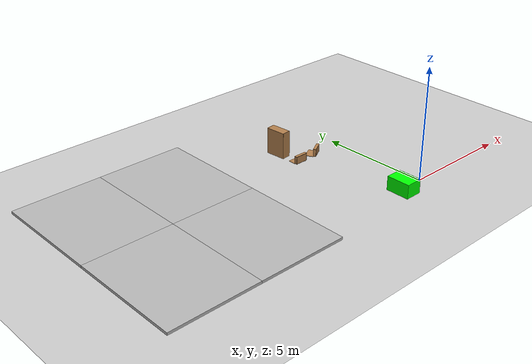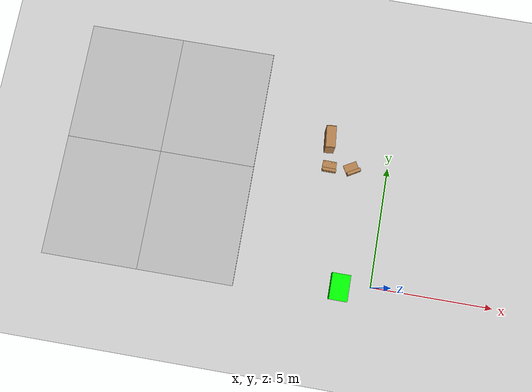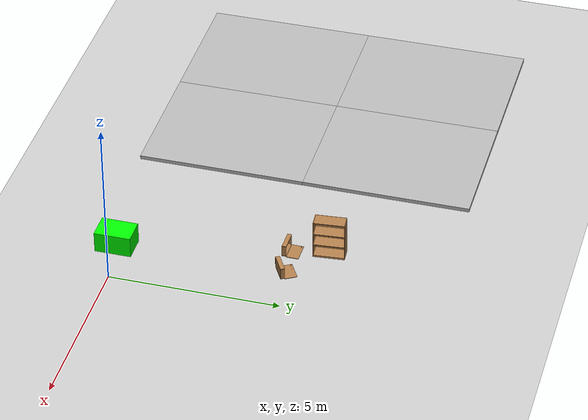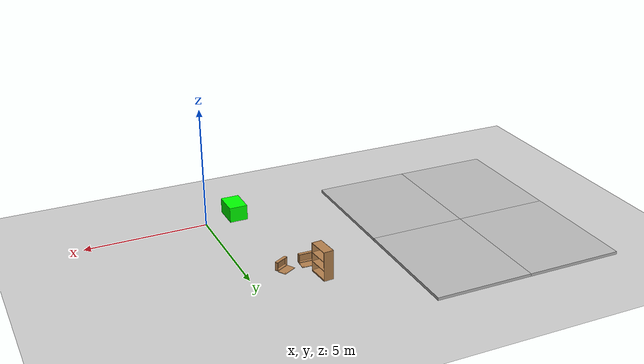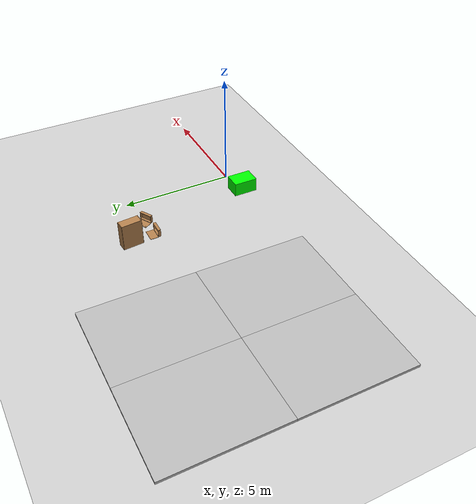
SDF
<sdf version="1.7">
 <world name="default">
  <model name="ground_plane">
   <static>1</static>
   <link name="link">
    <collision name="collision">
     <geometry><plane><normal>0 0 1</normal><size>100 100</size></plane></geometry>
     <surface>
      <contact><collide_bitmask>65535</collide_bitmask></contact>
      <friction><ode><mu>100</mu><mu2>50</mu2></ode></friction>
     </surface>
    </collision>
    <visual name="visual">
     <cast_shadows>0</cast_shadows>
     <geometry><plane><normal>0 0 1</normal><size>100 100</size></plane></geometry>
     <material>
      <script><uri>file://media/materials/scripts/gazebo.material</uri><name>Gazebo/Grey</name></script>
     </material>
    </visual>
   </link>
  </model>
  <model name="bookshelf">
   <static>1</static>
   <link name="link">
    <inertial><mass>1</mass></inertial>
    <collision name="back">
     <pose>0 0.005 0.6 0 -0 0</pose>
     <geometry><box><size>0.9 0.01 1.2</size></box></geometry>
    </collision>
    <visual name="visual1">
     <pose>0 0.005 0.6 0 -0 0</pose>
     <geometry><box><size>0.9 0.01 1.2</size></box></geometry>
     <material>
      <script><uri>file://media/materials/scripts/gazebo.material</uri><name>Gazebo/Wood</name></script>
     </material>
    </visual>
    <collision name="left_side">
     <pose>0.45 -0.195 0.6 0 -0 0</pose>
     <geometry><box><size>0.02 0.4 1.2</size></box></geometry>
    </collision>
    <visual name="visual2">
     <pose>0.45 -0.195 0.6 0 -0 0</pose>
     <geometry><box><size>0.02 0.4 1.2</size></box></geometry>
     <material>
      <script><uri>file://media/materials/scripts/gazebo.material</uri><name>Gazebo/Wood</name></script>
     </material>
    </visual>
    <collision name="right_side">
     <pose>-0.45 -0.195 0.6 0 -0 0</pose>
     <geometry><box><size>0.02 0.4 1.2</size></box></geometry>
    </collision>
    <visual name="visual3">
     <pose>-0.45 -0.195 0.6 0 -0 0</pose>
     <geometry><box><size>0.02 0.4 1.2</size></box></geometry>
     <material>
      <script><uri>file://media/materials/scripts/gazebo.material</uri><name>Gazebo/Wood</name></script>
     </material>
    </visual>
    <collision name="bottom">
     <pose>0 -0.195 0.03 0 -0 0</pose>
     <geometry><box><size>0.88 0.4 0.06</size></box></geometry>
    </collision>
    <visual name="visual4">
     <pose>0 -0.195 0.03 0 -0 0</pose>
     <geometry><box><size>0.88 0.4 0.06</size></box></geometry>
     <material>
      <script><uri>file://media/materials/scripts/gazebo.material</uri><name>Gazebo/Wood</name></script>
     </material>
    </visual>
    <collision name="top">
     <pose>0 -0.195 1.19 0 -0 0</pose>
     <geometry><box><size>0.88 0.4 0.02</size></box></geometry>
    </collision>
    <visual name="visual5">
     <pose>0 -0.195 1.19 0 -0 0</pose>
     <geometry><box><size>0.88 0.4 0.02</size></box></geometry>
     <material>
      <script><uri>file://media/materials/scripts/gazebo.material</uri><name>Gazebo/Wood</name></script>
     </material>
    </visual>
    <collision name="low_shelf">
     <pose>0 -0.195 0.43 0 -0 0</pose>
     <geometry><box><size>0.88 0.4 0.02</size></box></geometry>
    </collision>
    <visual name="visual6">
     <pose>0 -0.195 0.43 0 -0 0</pose>
     <geometry><box><size>0.88 0.4 0.02</size></box></geometry>
     <material>
      <script><uri>file://media/materials/scripts/gazebo.material</uri><name>Gazebo/Wood</name></script>
     </material>
    </visual>
    <collision name="high_shelf">
     <pose>0 -0.195 0.8 0 -0 0</pose>
     <geometry><box><size>0.88 0.4 0.02</size></box></geometry>
    </collision>
    <visual name="visual7">
     <pose>0 -0.195 0.8 0 -0 0</pose>
     <geometry><box><size>0.88 0.4 0.02</size></box></geometry>
     <material>
      <script><uri>file://media/materials/scripts/gazebo.material</uri><name>Gazebo/Wood</name></script>
     </material>
    </visual>
   </link>
   <pose>-2.81629 5.72042 0 0 -0 1.65757</pose>
  </model>
  <model name="mud_box">
   <static>1</static>
   <link name="link">
    <collision name="collision"><geometry><box><size>8 10 0.2</size></box></geometry></collision>
    <visual name="visual_1">
     <pose>-2 2.5 0 0 -0 0</pose>
     <cast_shadows>0</cast_shadows>
     <geometry><box><size>4 5 0.2</size></box></geometry>
     <material>
      <script>
       <uri>model://mud_box/materials/scripts</uri>
       <uri>model://mud_box/materials/textures</uri>
       <name>vrc/mud</name>
      </script>
     </material>
    </visual>
    <visual name="visual_2">
     <pose>2 2.5 0 0 -0 0</pose>
     <cast_shadows>0</cast_shadows>
     <geometry><box><size>4 5 0.2</size></box></geometry>
     <material>
      <script>
       <uri>model://mud_box/materials/scripts</uri>
       <uri>model://mud_box/materials/textures</uri>
       <name>vrc/mud</name>
      </script>
     </material>
    </visual>
    <visual name="visual_3">
     <pose>2 -2.5 0 0 -0 0</pose>
     <cast_shadows>0</cast_shadows>
     <geometry><box><size>4 5 0.2</size></box></geometry>
     <material>
      <script>
       <uri>model://mud_box/materials/scripts</uri>
       <uri>model://mud_box/materials/textures</uri>
       <name>vrc/mud</name>
      </script>
     </material>
    </visual>
    <visual name="visual_4">
     <pose>-2 -2.5 0 0 -0 0</pose>
     <cast_shadows>0</cast_shadows>
     <geometry><box><size>4 5 0.2</size></box></geometry>
     <material>
      <script>
       <uri>model://mud_box/materials/scripts</uri>
       <uri>model://mud_box/materials/textures</uri>
       <name>vrc/mud</name>
      </script>
     </material>
    </visual>
   </link>
   <pose>-9.5844 4.13482 0 0 -0 0</pose>
  </model>
  <model name="wooden_case_metal_peg_clone">
   <frame name="wooden_case::__model__" attached_to="wooden_case::base">
    <pose relative_to="__model__">0 0 0 0 -0 0</pose>
   </frame>
   <link name="wooden_case::base">
    <pose relative_to="wooden_case::__model__">0 0 0.024 0 -0 0</pose>
    <inertial>
     <pose>-0.022184 0 0.171592 0 -0 0</pose>
     <mass>3.96264</mass>
     <inertia>
      <ixx>0.213536</ixx>
      <ixy>0</ixy>
      <ixz>0.000779377</ixz>
      <iyy>0.0708943</iyy>
      <iyz>0</iyz>
      <izz>0.154604</izz>
     </inertia>
    </inertial>
    <collision name="collision_back">
     <pose>-0.053975 0 0.1778 0 -0 0</pose>
     <geometry><box><size>0.01905 0.5461 0.3175</size></box></geometry>
     <surface>
      <contact>
       <poissons_ratio>0.347</poissons_ratio>
       <elastic_modulus>8.8e+09</elastic_modulus>
       <ode><kp>100000</kp><kd>100</kd><max_vel>100</max_vel><min_depth>0.001</min_depth></ode>
      </contact>
      <friction>
       <torsional>
        <coefficient>1</coefficient>
        <use_patch_radius>0</use_patch_radius>
        <surface_radius>0.01</surface_radius>
       </torsional>
      </friction>
     </surface>
    </collision>
    <visual name="visual_back">
     <pose>-0.053975 0 0.1778 0 -0 0</pose>
     <geometry><box><size>0.01905 0.5461 0.3175</size></box></geometry>
     <material>
      <script><uri>file://media/materials/scripts/gazebo.material</uri><name>Gazebo/Wood</name></script>
     </material>
    </visual>
    <collision name="collision_bottom">
     <pose>0 0 0.009525 0 -0 0</pose>
     <geometry><box><size>0.127 0.5842 0.01905</size></box></geometry>
     <surface>
      <contact>
       <poissons_ratio>0.347</poissons_ratio>
       <elastic_modulus>8.8e+09</elastic_modulus>
       <ode><kp>100000</kp><kd>100</kd><max_vel>100</max_vel><min_depth>0.001</min_depth></ode>
      </contact>
      <friction>
       <torsional>
        <coefficient>1</coefficient>
        <use_patch_radius>0</use_patch_radius>
        <surface_radius>0.01</surface_radius>
       </torsional>
      </friction>
     </surface>
    </collision>
    <visual name="visual_bottom">
     <pose>0 0 0.009525 0 -0 0</pose>
     <geometry><box><size>0.127 0.5842 0.01905</size></box></geometry>
     <material>
      <script><uri>file://media/materials/scripts/gazebo.material</uri><name>Gazebo/Wood</name></script>
     </material>
    </visual>
    <collision name="collision_top">
     <pose>0 0 0.346075 0 -0 0</pose>
     <geometry><box><size>0.127 0.5842 0.01905</size></box></geometry>
     <surface>
      <contact>
       <poissons_ratio>0.347</poissons_ratio>
       <elastic_modulus>8.8e+09</elastic_modulus>
       <ode><kp>100000</kp><kd>100</kd><max_vel>100</max_vel><min_depth>0.001</min_depth></ode>
      </contact>
      <friction>
       <torsional>
        <coefficient>1</coefficient>
        <use_patch_radius>0</use_patch_radius>
        <surface_radius>0.01</surface_radius>
       </torsional>
      </friction>
     </surface>
    </collision>
    <visual name="visual_top">
     <pose>0 0 0.346075 0 -0 0</pose>
     <geometry><box><size>0.127 0.5842 0.01905</size></box></geometry>
     <material>
      <script><uri>file://media/materials/scripts/gazebo.material</uri><name>Gazebo/Wood</name></script>
     </material>
    </visual>
    <collision name="collision_left">
     <pose>0 -0.282575 0.1778 0 -0 0</pose>
     <geometry><box><size>0.127 0.01905 0.3175</size></box></geometry>
     <surface>
      <contact>
       <poissons_ratio>0.347</poissons_ratio>
       <elastic_modulus>8.8e+09</elastic_modulus>
       <ode><kp>100000</kp><kd>100</kd><max_vel>100</max_vel><min_depth>0.001</min_depth></ode>
      </contact>
      <friction>
       <torsional>
        <coefficient>1</coefficient>
        <use_patch_radius>0</use_patch_radius>
        <surface_radius>0.01</surface_radius>
       </torsional>
      </friction>
     </surface>
    </collision>
    <visual name="visual_left">
     <pose>0 -0.282575 0.1778 0 -0 0</pose>
     <geometry><box><size>0.127 0.01905 0.3175</size></box></geometry>
     <material>
      <script><uri>file://media/materials/scripts/gazebo.material</uri><name>Gazebo/Wood</name></script>
     </material>
    </visual>
    <collision name="collision_right">
     <pose>0 0.282575 0.1778 0 -0 0</pose>
     <geometry><box><size>0.127 0.01905 0.3175</size></box></geometry>
     <surface>
      <contact>
       <poissons_ratio>0.347</poissons_ratio>
       <elastic_modulus>8.8e+09</elastic_modulus>
       <ode><kp>100000</kp><kd>100</kd><max_vel>100</max_vel><min_depth>0.001</min_depth></ode>
      </contact>
      <friction>
       <torsional>
        <coefficient>1</coefficient>
        <use_patch_radius>0</use_patch_radius>
        <surface_radius>0.01</surface_radius>
       </torsional>
      </friction>
     </surface>
    </collision>
    <visual name="visual_right">
     <pose>0 0.282575 0.1778 0 -0 0</pose>
     <geometry><box><size>0.127 0.01905 0.3175</size></box></geometry>
     <material>
      <script><uri>file://media/materials/scripts/gazebo.material</uri><name>Gazebo/Wood</name></script>
     </material>
    </visual>
    <collision name="collision_block_left">
     <pose>0.0095 -0.2151 -0.012 0 -0 0</pose>
     <geometry><box><size>0.108 0.05 0.024</size></box></geometry>
     <surface>
      <contact>
       <poissons_ratio>0.347</poissons_ratio>
       <elastic_modulus>8.8e+09</elastic_modulus>
       <ode><kp>100000</kp><kd>100</kd><max_vel>100</max_vel><min_depth>0.001</min_depth></ode>
      </contact>
      <friction>
       <torsional>
        <coefficient>1</coefficient>
        <use_patch_radius>0</use_patch_radius>
        <surface_radius>0.01</surface_radius>
       </torsional>
      </friction>
     </surface>
    </collision>
    <visual name="visual_block_left">
     <pose>0.0095 -0.2151 -0.012 0 -0 0</pose>
     <geometry><box><size>0.108 0.05 0.024</size></box></geometry>
     <material>
      <script><uri>file://media/materials/scripts/gazebo.material</uri><name>Gazebo/Wood</name></script>
     </material>
    </visual>
    <collision name="collision_block_right">
     <pose>0.0095 0.2151 -0.012 0 -0 0</pose>
     <geometry><box><size>0.108 0.05 0.024</size></box></geometry>
     <surface>
      <contact>
       <poissons_ratio>0.347</poissons_ratio>
       <elastic_modulus>8.8e+09</elastic_modulus>
       <ode><kp>100000</kp><kd>100</kd><max_vel>100</max_vel><min_depth>0.001</min_depth></ode>
      </contact>
      <friction>
       <torsional>
        <coefficient>1</coefficient>
        <use_patch_radius>0</use_patch_radius>
        <surface_radius>0.01</surface_radius>
       </torsional>
      </friction>
     </surface>
    </collision>
    <visual name="visual_block_right">
     <pose>0.0095 0.2151 -0.012 0 -0 0</pose>
     <geometry><box><size>0.108 0.05 0.024</size></box></geometry>
     <material>
      <script><uri>file://media/materials/scripts/gazebo.material</uri><name>Gazebo/Wood</name></script>
     </material>
    </visual>
   </link>
   <link name="wooden_case::lid">
    <pose relative_to="wooden_case::__model__">0.243775 0 0.009525 0 -0 0</pose>
    <inertial>
     <mass>1.97874</mass>
     <inertia>
      <ixx>0.0563367</ixx>
      <ixy>0</ixy>
      <ixz>0</ixz>
      <iyy>0.020911</iyy>
      <iyz>0</iyz>
      <izz>0.0771281</izz>
     </inertia>
    </inertial>
    <collision name="collision">
     <geometry><box><size>0.3556 0.5842 0.01905</size></box></geometry>
     <surface>
      <contact>
       <poissons_ratio>0.347</poissons_ratio>
       <elastic_modulus>8.8e+09</elastic_modulus>
       <ode><kp>100000</kp><kd>100</kd><max_vel>100</max_vel><min_depth>0.001</min_depth></ode>
      </contact>
      <friction>
       <torsional>
        <coefficient>1</coefficient>
        <use_patch_radius>0</use_patch_radius>
        <surface_radius>0.01</surface_radius>
       </torsional>
      </friction>
     </surface>
    </collision>
    <visual name="visual">
     <geometry><box><size>0.3556 0.5842 0.01905</size></box></geometry>
     <material>
      <script><uri>file://media/materials/scripts/gazebo.material</uri><name>Gazebo/Wood</name></script>
     </material>
    </visual>
    <visual name="tee_nut_1">
     <pose>0.122 -0.216 0 0 -0 0</pose>
     <geometry><cylinder><radius>0.00635</radius><length>0.0192405</length></cylinder></geometry>
     <material>
      <script><uri>file://media/materials/scripts/gazebo.material</uri><name>Gazebo/Grey</name></script>
     </material>
    </visual>
    <visual name="tee_nut_2">
     <pose>0.122 -0.088 0 0 -0 0</pose>
     <geometry><cylinder><radius>0.00635</radius><length>0.0192405</length></cylinder></geometry>
     <material>
      <script><uri>file://media/materials/scripts/gazebo.material</uri><name>Gazebo/Grey</name></script>
     </material>
    </visual>
    <visual name="tee_nut_3">
     <pose>0.122 0.088 0 0 -0 0</pose>
     <geometry><cylinder><radius>0.00635</radius><length>0.0192405</length></cylinder></geometry>
     <material>
      <script><uri>file://media/materials/scripts/gazebo.material</uri><name>Gazebo/Grey</name></script>
     </material>
    </visual>
    <visual name="tee_nut_4">
     <pose>0.122 0.216 0 0 -0 0</pose>
     <geometry><cylinder><radius>0.00635</radius><length>0.0192405</length></cylinder></geometry>
     <material>
      <script><uri>file://media/materials/scripts/gazebo.material</uri><name>Gazebo/Grey</name></script>
     </material>
    </visual>
   </link>
   <joint name="wooden_case::lid_hinge" type="revolute">
    <pose>-0.1778 0 0.01905 0 -0 0</pose>
    <parent>wooden_case::base</parent>
    <child>wooden_case::lid</child>
    <axis>
     <xyz>0 1 0</xyz>
     <limit><upper>0.523599</upper><lower>-1.5708</lower></limit>
     <dynamics><spring_reference>0</spring_reference><spring_stiffness>0</spring_stiffness></dynamics>
    </axis>
   </joint>
   <frame name="peg::__model__" attached_to="peg::link">
    <pose relative_to="__model__">0.365774 0.216 0.01905 0 -0 0</pose>
   </frame>
   <link name="peg::link">
    <pose relative_to="peg::__model__">0 0 0.031 0 -0 0</pose>
    <inertial>
     <mass>0.0121</mass>
     <inertia>
      <ixx>3.90898e-06</ixx>
      <ixy>0</ixy>
      <ixz>0</ixz>
      <iyy>3.90898e-06</iyy>
      <iyz>0</iyz>
      <izz>6.58845e-08</izz>
     </inertia>
    </inertial>
    <collision name="collision">
     <geometry><cylinder><radius>0.0033</radius><length>0.062</length></cylinder></geometry>
     <surface>
      <contact>
       <poissons_ratio>0.305</poissons_ratio>
       <elastic_modulus>2e+11</elastic_modulus>
       <ode><kp>100000</kp><kd>100</kd><max_vel>100</max_vel><min_depth>0.001</min_depth></ode>
      </contact>
      <friction>
       <torsional>
        <coefficient>1</coefficient>
        <use_patch_radius>0</use_patch_radius>
        <surface_radius>0.01</surface_radius>
       </torsional>
      </friction>
     </surface>
    </collision>
    <visual name="visual">
     <geometry><cylinder><radius>0.0033</radius><length>0.062</length></cylinder></geometry>
     <material>
      <script><uri>file://media/materials/scripts/gazebo.material</uri><name>Gazebo/Grey</name></script>
     </material>
    </visual>
   </link>
   <joint name="case_peg" type="revolute">
    <child>peg::link</child>
    <parent>wooden_case::lid</parent>
    <axis>
     <xyz>0 0 1</xyz>
     <limit><upper>0</upper><lower>0</lower></limit>
     <dynamics><spring_reference>0</spring_reference><spring_stiffness>0</spring_stiffness></dynamics>
    </axis>
   </joint>
   <pose>-2.45194 4.51946 -0.001057 -0 -0.000428 1.55926</pose>
  </model>
  <model name="wooden_case_metal_peg_clone_clone">
   <frame name="wooden_case::__model__" attached_to="wooden_case::base">
    <pose relative_to="__model__">0 0 0 0 -0 0</pose>
   </frame>
   <link name="wooden_case::base">
    <pose relative_to="wooden_case::__model__">0 0 0.024 0 -0 0</pose>
    <inertial>
     <pose>-0.022184 0 0.171592 0 -0 0</pose>
     <mass>3.96264</mass>
     <inertia>
      <ixx>0.213536</ixx>
      <ixy>0</ixy>
      <ixz>0.000779377</ixz>
      <iyy>0.0708943</iyy>
      <iyz>0</iyz>
      <izz>0.154604</izz>
     </inertia>
    </inertial>
    <collision name="collision_back">
     <pose>-0.053975 0 0.1778 0 -0 0</pose>
     <geometry><box><size>0.01905 0.5461 0.3175</size></box></geometry>
     <surface>
      <contact>
       <poissons_ratio>0.347</poissons_ratio>
       <elastic_modulus>8.8e+09</elastic_modulus>
       <ode><kp>100000</kp><kd>100</kd><max_vel>100</max_vel><min_depth>0.001</min_depth></ode>
      </contact>
      <friction>
       <torsional>
        <coefficient>1</coefficient>
        <use_patch_radius>0</use_patch_radius>
        <surface_radius>0.01</surface_radius>
       </torsional>
      </friction>
     </surface>
    </collision>
    <visual name="visual_back">
     <pose>-0.053975 0 0.1778 0 -0 0</pose>
     <geometry><box><size>0.01905 0.5461 0.3175</size></box></geometry>
     <material>
      <script><uri>file://media/materials/scripts/gazebo.material</uri><name>Gazebo/Wood</name></script>
     </material>
    </visual>
    <collision name="collision_bottom">
     <pose>0 0 0.009525 0 -0 0</pose>
     <geometry><box><size>0.127 0.5842 0.01905</size></box></geometry>
     <surface>
      <contact>
       <poissons_ratio>0.347</poissons_ratio>
       <elastic_modulus>8.8e+09</elastic_modulus>
       <ode><kp>100000</kp><kd>100</kd><max_vel>100</max_vel><min_depth>0.001</min_depth></ode>
      </contact>
      <friction>
       <torsional>
        <coefficient>1</coefficient>
        <use_patch_radius>0</use_patch_radius>
        <surface_radius>0.01</surface_radius>
       </torsional>
      </friction>
     </surface>
    </collision>
    <visual name="visual_bottom">
     <pose>0 0 0.009525 0 -0 0</pose>
     <geometry><box><size>0.127 0.5842 0.01905</size></box></geometry>
     <material>
      <script><uri>file://media/materials/scripts/gazebo.material</uri><name>Gazebo/Wood</name></script>
     </material>
    </visual>
    <collision name="collision_top">
     <pose>0 0 0.346075 0 -0 0</pose>
     <geometry><box><size>0.127 0.5842 0.01905</size></box></geometry>
     <surface>
      <contact>
       <poissons_ratio>0.347</poissons_ratio>
       <elastic_modulus>8.8e+09</elastic_modulus>
       <ode><kp>100000</kp><kd>100</kd><max_vel>100</max_vel><min_depth>0.001</min_depth></ode>
      </contact>
      <friction>
       <torsional>
        <coefficient>1</coefficient>
        <use_patch_radius>0</use_patch_radius>
        <surface_radius>0.01</surface_radius>
       </torsional>
      </friction>
     </surface>
    </collision>
    <visual name="visual_top">
     <pose>0 0 0.346075 0 -0 0</pose>
     <geometry><box><size>0.127 0.5842 0.01905</size></box></geometry>
     <material>
      <script><uri>file://media/materials/scripts/gazebo.material</uri><name>Gazebo/Wood</name></script>
     </material>
    </visual>
    <collision name="collision_left">
     <pose>0 -0.282575 0.1778 0 -0 0</pose>
     <geometry><box><size>0.127 0.01905 0.3175</size></box></geometry>
     <surface>
      <contact>
       <poissons_ratio>0.347</poissons_ratio>
       <elastic_modulus>8.8e+09</elastic_modulus>
       <ode><kp>100000</kp><kd>100</kd><max_vel>100</max_vel><min_depth>0.001</min_depth></ode>
      </contact>
      <friction>
       <torsional>
        <coefficient>1</coefficient>
        <use_patch_radius>0</use_patch_radius>
        <surface_radius>0.01</surface_radius>
       </torsional>
      </friction>
     </surface>
    </collision>
    <visual name="visual_left">
     <pose>0 -0.282575 0.1778 0 -0 0</pose>
     <geometry><box><size>0.127 0.01905 0.3175</size></box></geometry>
     <material>
      <script><uri>file://media/materials/scripts/gazebo.material</uri><name>Gazebo/Wood</name></script>
     </material>
    </visual>
    <collision name="collision_right">
     <pose>0 0.282575 0.1778 0 -0 0</pose>
     <geometry><box><size>0.127 0.01905 0.3175</size></box></geometry>
     <surface>
      <contact>
       <poissons_ratio>0.347</poissons_ratio>
       <elastic_modulus>8.8e+09</elastic_modulus>
       <ode><kp>100000</kp><kd>100</kd><max_vel>100</max_vel><min_depth>0.001</min_depth></ode>
      </contact>
      <friction>
       <torsional>
        <coefficient>1</coefficient>
        <use_patch_radius>0</use_patch_radius>
        <surface_radius>0.01</surface_radius>
       </torsional>
      </friction>
     </surface>
    </collision>
    <visual name="visual_right">
     <pose>0 0.282575 0.1778 0 -0 0</pose>
     <geometry><box><size>0.127 0.01905 0.3175</size></box></geometry>
     <material>
      <script><uri>file://media/materials/scripts/gazebo.material</uri><name>Gazebo/Wood</name></script>
     </material>
    </visual>
    <collision name="collision_block_left">
     <pose>0.0095 -0.2151 -0.012 0 -0 0</pose>
     <geometry><box><size>0.108 0.05 0.024</size></box></geometry>
     <surface>
      <contact>
       <poissons_ratio>0.347</poissons_ratio>
       <elastic_modulus>8.8e+09</elastic_modulus>
       <ode><kp>100000</kp><kd>100</kd><max_vel>100</max_vel><min_depth>0.001</min_depth></ode>
      </contact>
      <friction>
       <torsional>
        <coefficient>1</coefficient>
        <use_patch_radius>0</use_patch_radius>
        <surface_radius>0.01</surface_radius>
       </torsional>
      </friction>
     </surface>
    </collision>
    <visual name="visual_block_left">
     <pose>0.0095 -0.2151 -0.012 0 -0 0</pose>
     <geometry><box><size>0.108 0.05 0.024</size></box></geometry>
     <material>
      <script><uri>file://media/materials/scripts/gazebo.material</uri><name>Gazebo/Wood</name></script>
     </material>
    </visual>
    <collision name="collision_block_right">
     <pose>0.0095 0.2151 -0.012 0 -0 0</pose>
     <geometry><box><size>0.108 0.05 0.024</size></box></geometry>
     <surface>
      <contact>
       <poissons_ratio>0.347</poissons_ratio>
       <elastic_modulus>8.8e+09</elastic_modulus>
       <ode><kp>100000</kp><kd>100</kd><max_vel>100</max_vel><min_depth>0.001</min_depth></ode>
      </contact>
      <friction>
       <torsional>
        <coefficient>1</coefficient>
        <use_patch_radius>0</use_patch_radius>
        <surface_radius>0.01</surface_radius>
       </torsional>
      </friction>
     </surface>
    </collision>
    <visual name="visual_block_right">
     <pose>0.0095 0.2151 -0.012 0 -0 0</pose>
     <geometry><box><size>0.108 0.05 0.024</size></box></geometry>
     <material>
      <script><uri>file://media/materials/scripts/gazebo.material</uri><name>Gazebo/Wood</name></script>
     </material>
    </visual>
   </link>
   <link name="wooden_case::lid">
    <pose relative_to="wooden_case::__model__">0.243775 0 0.009525 0 -0 0</pose>
    <inertial>
     <mass>1.97874</mass>
     <inertia>
      <ixx>0.0563367</ixx>
      <ixy>0</ixy>
      <ixz>0</ixz>
      <iyy>0.020911</iyy>
      <iyz>0</iyz>
      <izz>0.0771281</izz>
     </inertia>
    </inertial>
    <collision name="collision">
     <geometry><box><size>0.3556 0.5842 0.01905</size></box></geometry>
     <surface>
      <contact>
       <poissons_ratio>0.347</poissons_ratio>
       <elastic_modulus>8.8e+09</elastic_modulus>
       <ode><kp>100000</kp><kd>100</kd><max_vel>100</max_vel><min_depth>0.001</min_depth></ode>
      </contact>
      <friction>
       <torsional>
        <coefficient>1</coefficient>
        <use_patch_radius>0</use_patch_radius>
        <surface_radius>0.01</surface_radius>
       </torsional>
      </friction>
     </surface>
    </collision>
    <visual name="visual">
     <geometry><box><size>0.3556 0.5842 0.01905</size></box></geometry>
     <material>
      <script><uri>file://media/materials/scripts/gazebo.material</uri><name>Gazebo/Wood</name></script>
     </material>
    </visual>
    <visual name="tee_nut_1">
     <pose>0.122 -0.216 0 0 -0 0</pose>
     <geometry><cylinder><radius>0.00635</radius><length>0.0192405</length></cylinder></geometry>
     <material>
      <script><uri>file://media/materials/scripts/gazebo.material</uri><name>Gazebo/Grey</name></script>
     </material>
    </visual>
    <visual name="tee_nut_2">
     <pose>0.122 -0.088 0 0 -0 0</pose>
     <geometry><cylinder><radius>0.00635</radius><length>0.0192405</length></cylinder></geometry>
     <material>
      <script><uri>file://media/materials/scripts/gazebo.material</uri><name>Gazebo/Grey</name></script>
     </material>
    </visual>
    <visual name="tee_nut_3">
     <pose>0.122 0.088 0 0 -0 0</pose>
     <geometry><cylinder><radius>0.00635</radius><length>0.0192405</length></cylinder></geometry>
     <material>
      <script><uri>file://media/materials/scripts/gazebo.material</uri><name>Gazebo/Grey</name></script>
     </material>
    </visual>
    <visual name="tee_nut_4">
     <pose>0.122 0.216 0 0 -0 0</pose>
     <geometry><cylinder><radius>0.00635</radius><length>0.0192405</length></cylinder></geometry>
     <material>
      <script><uri>file://media/materials/scripts/gazebo.material</uri><name>Gazebo/Grey</name></script>
     </material>
    </visual>
   </link>
   <joint name="wooden_case::lid_hinge" type="revolute">
    <pose>-0.1778 0 0.01905 0 -0 0</pose>
    <parent>wooden_case::base</parent>
    <child>wooden_case::lid</child>
    <axis>
     <xyz>0 1 0</xyz>
     <limit><upper>0.523599</upper><lower>-1.5708</lower></limit>
     <dynamics><spring_reference>0</spring_reference><spring_stiffness>0</spring_stiffness></dynamics>
    </axis>
   </joint>
   <frame name="peg::__model__" attached_to="peg::link">
    <pose relative_to="__model__">0.365774 0.216 0.01905 0 -0 0</pose>
   </frame>
   <link name="peg::link">
    <pose relative_to="peg::__model__">0 0 0.031 0 -0 0</pose>
    <inertial>
     <mass>0.0121</mass>
     <inertia>
      <ixx>3.90898e-06</ixx>
      <ixy>0</ixy>
      <ixz>0</ixz>
      <iyy>3.90898e-06</iyy>
      <iyz>0</iyz>
      <izz>6.58845e-08</izz>
     </inertia>
    </inertial>
    <collision name="collision">
     <geometry><cylinder><radius>0.0033</radius><length>0.062</length></cylinder></geometry>
     <surface>
      <contact>
       <poissons_ratio>0.305</poissons_ratio>
       <elastic_modulus>2e+11</elastic_modulus>
       <ode><kp>100000</kp><kd>100</kd><max_vel>100</max_vel><min_depth>0.001</min_depth></ode>
      </contact>
      <friction>
       <torsional>
        <coefficient>1</coefficient>
        <use_patch_radius>0</use_patch_radius>
        <surface_radius>0.01</surface_radius>
       </torsional>
      </friction>
     </surface>
    </collision>
    <visual name="visual">
     <geometry><cylinder><radius>0.0033</radius><length>0.062</length></cylinder></geometry>
     <material>
      <script><uri>file://media/materials/scripts/gazebo.material</uri><name>Gazebo/Grey</name></script>
     </material>
    </visual>
   </link>
   <joint name="case_peg" type="revolute">
    <child>peg::link</child>
    <parent>wooden_case::lid</parent>
    <axis>
     <xyz>0 0 1</xyz>
     <limit><upper>0</upper><lower>0</lower></limit>
     <dynamics><spring_reference>0</spring_reference><spring_stiffness>0</spring_stiffness></dynamics>
    </axis>
   </joint>
   <pose>-1.41811 4.60806 -0.001057 -1e-06 -0.000403 2.09029</pose>
  </model>
  <model name="green_box_6">
   <link name="link">
    <inertial>
     <mass>1</mass>
     <inertia>
      <ixx>0.166667</ixx>
      <ixy>0</ixy>
      <ixz>0</ixz>
      <iyy>0.166667</iyy>
      <iyz>0</iyz>
      <izz>0.166667</izz>
     </inertia>
    </inertial>
    <visual name="visual">
     <geometry><box><size>0.75 1.07 0.63</size></box></geometry>
     <material>
      <script><name>Gazebo/Grey</name><uri>file://media/materials/scripts/gazebo.material</uri></script>
      <shader type="pixel"><normal_map>__default__</normal_map></shader>
      <ambient>0 1 0 1</ambient>
      <diffuse>0 1 0 1</diffuse>
      <specular>0.01 0.01 0.01 1</specular>
      <emissive>0 0 0 1</emissive>
     </material>
    </visual>
    <collision name="collision">
     <geometry><box><size>0.84 1 0.78</size></box></geometry>
     <surface>
      <friction>
       <ode><mu>1</mu><mu2>1</mu2><fdir1>0 0 0</fdir1><slip1>0</slip1><slip2>0</slip2></ode>
       <torsional>
        <coefficient>1</coefficient>
        <patch_radius>0</patch_radius>
        <surface_radius>0</surface_radius>
        <use_patch_radius>1</use_patch_radius>
        <ode><slip>0</slip></ode>
       </torsional>
      </friction>
      <bounce><restitution_coefficient>0</restitution_coefficient><threshold>1e+06</threshold></bounce>
      <contact>
       <collide_without_contact>0</collide_without_contact>
       <collide_without_contact_bitmask>1</collide_without_contact_bitmask>
       <collide_bitmask>1</collide_bitmask>
       <ode>
        <soft_cfm>0</soft_cfm>
        <soft_erp>0.2</soft_erp>
        <kp>1e+13</kp>
        <kd>1</kd>
        <max_vel>0.01</max_vel>
        <min_depth>0</min_depth>
       </ode>
       <bullet>
        <split_impulse>1</split_impulse>
        <split_impulse_penetration_threshold>-0.01</split_impulse_penetration_threshold>
        <soft_cfm>0</soft_cfm>
        <soft_erp>0.2</soft_erp>
        <kp>1e+13</kp>
        <kd>1</kd>
       </bullet>
      </contact>
     </surface>
    </collision>
   </link>
   <static>0</static>
   <pose>-1.30017 -0.18474 0.39 0 -0 0</pose>
  </model>
 </world>
</sdf>
